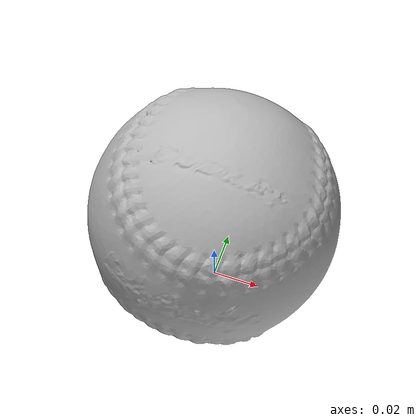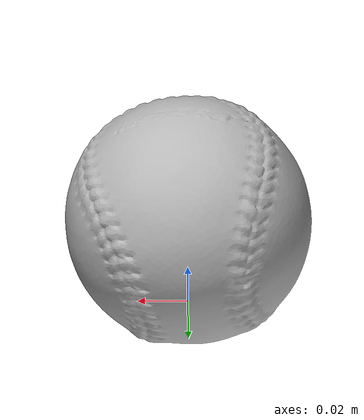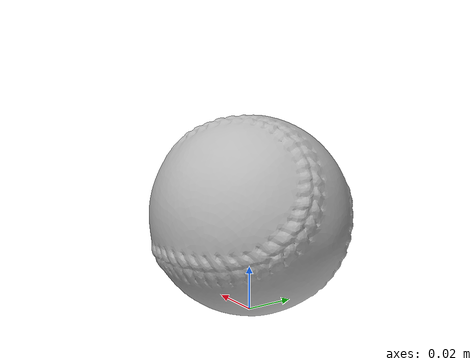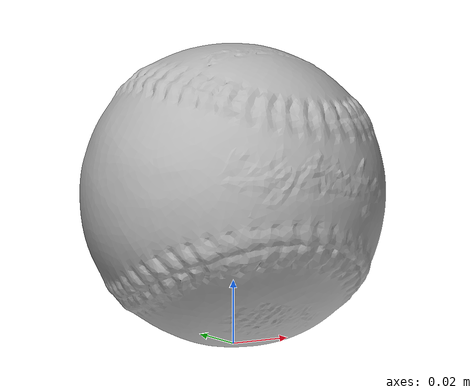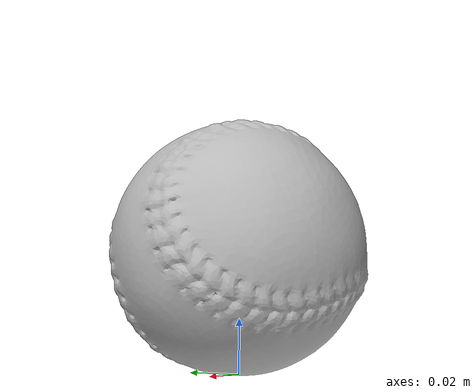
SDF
<?xml version="1.0" ?>
<sdf version='1.8'>
  <model name='ycb_054_softball'>
    <link name='body'>
      <inertial>
        <mass>0.191</mass>
        <pose>-0.000146794065 6.15358479e-05 0.047040134 0 0 0</pose>
        <inertia>
          <ixx>0.000176057597055</ixx>
          <ixy>1.46209511613e-07</ixy>
          <ixz>-5.66781120979e-08</ixz>
          <iyy>0.000175031787614</iyy>
          <iyz>1.33722221061e-07</iyz>
          <izz>0.000176695223127</izz>
        </inertia>
      </inertial>
      <visual name='ycb_054_softball_visual'>
        <pose>0.019503 -0.010821 0.000223 0 0 0</pose>
        <geometry>
          <mesh>
            <uri>model://ycb_054_softball/meshes/textured.dae</uri>
          </mesh>
        </geometry>
      </visual>
      <collision name='ycb_054_softball_collision'>
        <pose>0.019503 -0.010821 0.000223 0 0 0</pose>
        <geometry>
          <mesh>
            <uri>model://ycb_054_softball/meshes/nontextured.stl</uri>
          </mesh>
        </geometry>
        <max_contacts>10</max_contacts>
        <surface>
          <contact>
            <ode>
              <kp>1e15</kp>
              <kd>1e13</kd>
            </ode>
          </contact>
        </surface>
      </collision>
    </link>
  </model>
</sdf>
